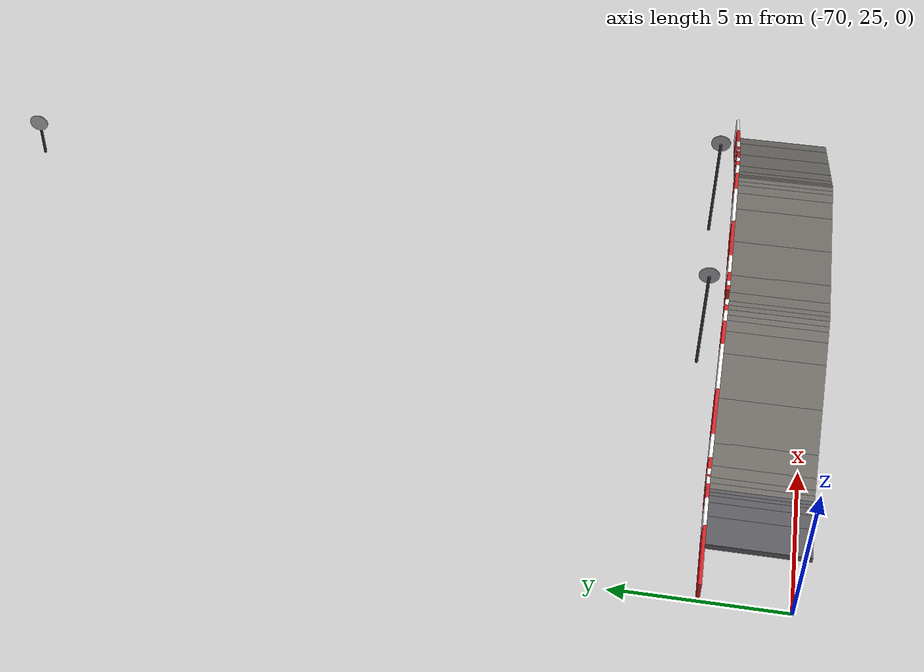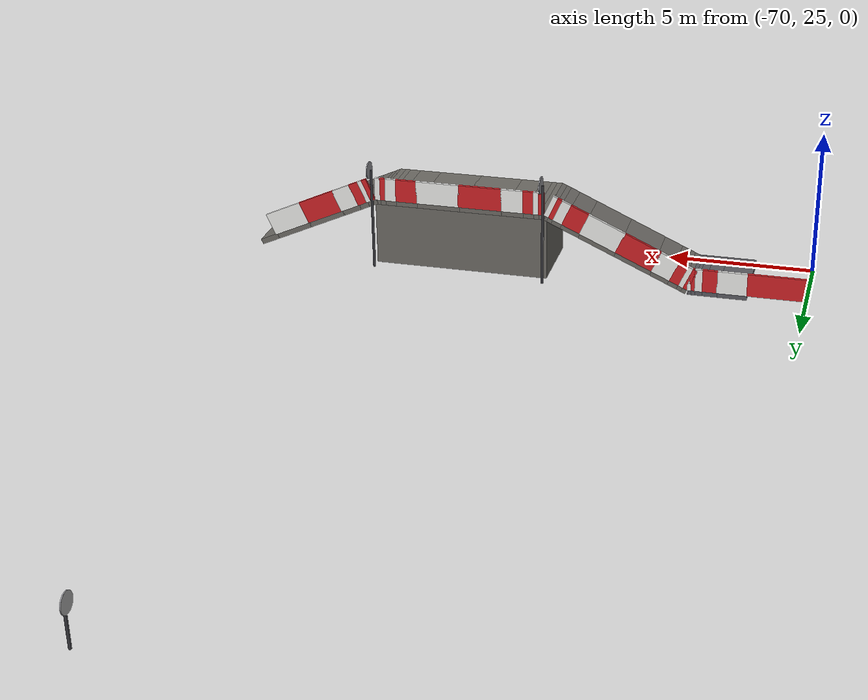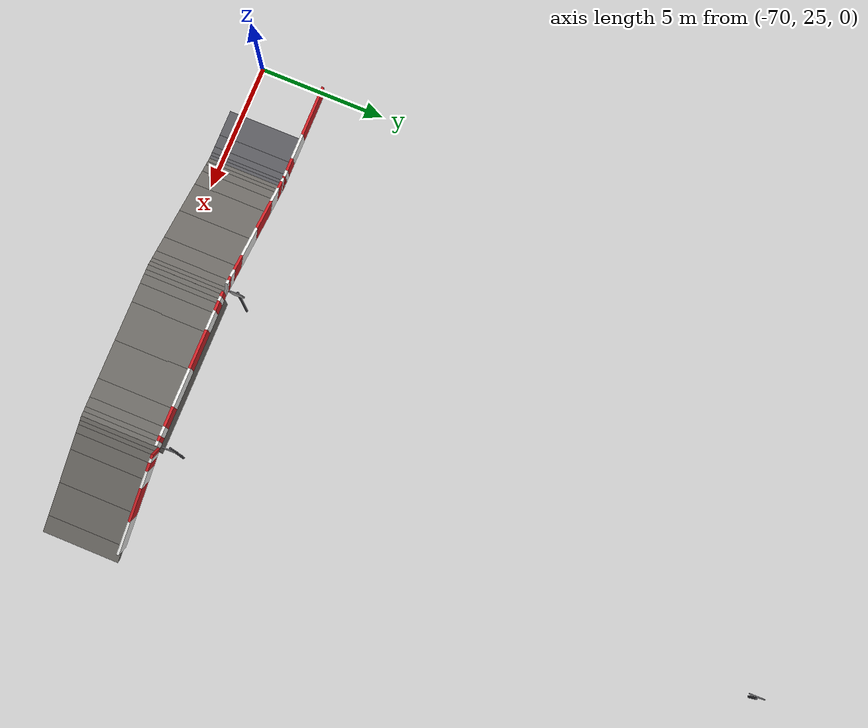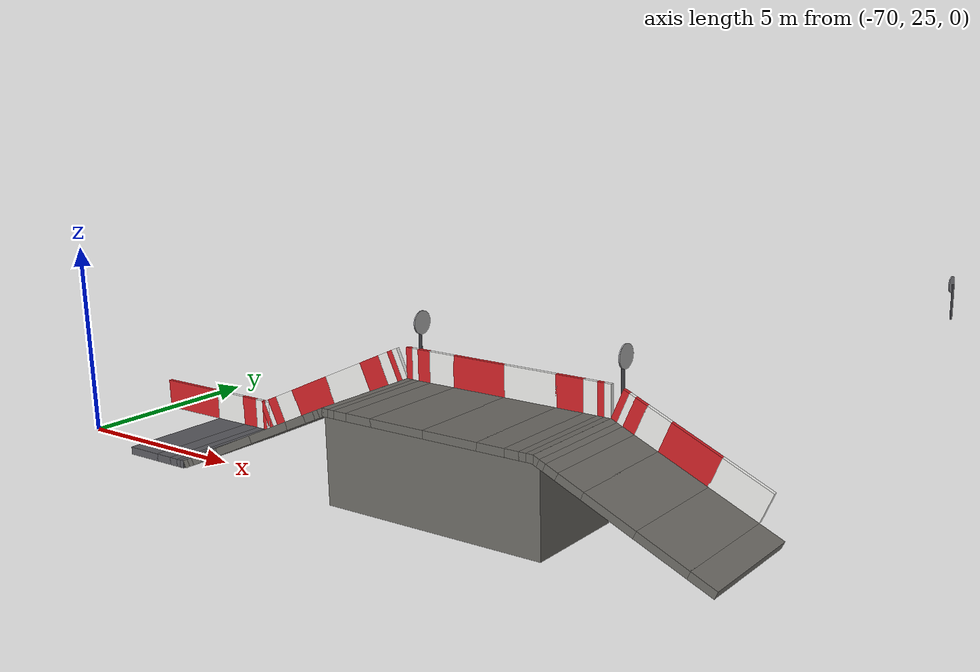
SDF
<sdf version="1.10">
 <world name="ika_parkur">
  <model name="parkur_road">
   <static>true</static>
   <link name="road_0162">
    <pose>-50.978536 26 0.330683 0 -0.422854 3.141593</pose>
    <collision name="road_0162_col">
     <geometry><box><size>0.699073 3 0.2</size></box></geometry>
     <surface>
      <friction><ode><mu>1</mu><mu2>1</mu2></ode></friction>
      <contact><ode><kp>1000000</kp><kd>1</kd></ode></contact>
     </surface>
    </collision>
    <visual name="road_0162_vis">
     <geometry><box><size>0.699073 3 0.2</size></box></geometry>
     <material>
      <ambient>0.42 0.41 0.39 1</ambient>
      <diffuse>0.42 0.41 0.39 1</diffuse>
      <specular>0.1 0.1 0.1 1</specular>
     </material>
    </visual>
   </link>
   <link name="road_0163">
    <pose>-51.916036 26 0.752558 0 -0.422854 3.141593</pose>
    <collision name="road_0163_col">
     <geometry><box><size>1.398147 3 0.2</size></box></geometry>
     <surface>
      <friction><ode><mu>1</mu><mu2>1</mu2></ode></friction>
      <contact><ode><kp>1000000</kp><kd>1</kd></ode></contact>
     </surface>
    </collision>
    <visual name="road_0163_vis">
     <geometry><box><size>1.398147 3 0.2</size></box></geometry>
     <material>
      <ambient>0.42 0.41 0.39 1</ambient>
      <diffuse>0.42 0.41 0.39 1</diffuse>
      <specular>0.1 0.1 0.1 1</specular>
     </material>
    </visual>
   </link>
   <link name="road_0164">
    <pose>-53.166036 26 1.315058 0 -0.422854 3.141593</pose>
    <collision name="road_0164_col">
     <geometry><box><size>1.398147 3 0.2</size></box></geometry>
     <surface>
      <friction><ode><mu>1</mu><mu2>1</mu2></ode></friction>
      <contact><ode><kp>1000000</kp><kd>1</kd></ode></contact>
     </surface>
    </collision>
    <visual name="road_0164_vis">
     <geometry><box><size>1.398147 3 0.2</size></box></geometry>
     <material>
      <ambient>0.42 0.41 0.39 1</ambient>
      <diffuse>0.42 0.41 0.39 1</diffuse>
      <specular>0.1 0.1 0.1 1</specular>
     </material>
    </visual>
   </link>
   <link name="road_0165">
    <pose>-54.103536 26 1.736933 0 -0.422854 3.141593</pose>
    <collision name="road_0165_col">
     <geometry><box><size>0.699073 3 0.2</size></box></geometry>
     <surface>
      <friction><ode><mu>1</mu><mu2>1</mu2></ode></friction>
      <contact><ode><kp>1000000</kp><kd>1</kd></ode></contact>
     </surface>
    </collision>
    <visual name="road_0165_vis">
     <geometry><box><size>0.699073 3 0.2</size></box></geometry>
     <material>
      <ambient>0.42 0.41 0.39 1</ambient>
      <diffuse>0.42 0.41 0.39 1</diffuse>
      <specular>0.1 0.1 0.1 1</specular>
     </material>
    </visual>
   </link>
   <link name="road_0166">
    <pose>-54.572286 26 1.94787 0 -0.422854 3.141593</pose>
    <collision name="road_0166_col">
     <geometry><box><size>0.349537 3 0.2</size></box></geometry>
     <surface>
      <friction><ode><mu>1</mu><mu2>1</mu2></ode></friction>
      <contact><ode><kp>1000000</kp><kd>1</kd></ode></contact>
     </surface>
    </collision>
    <visual name="road_0166_vis">
     <geometry><box><size>0.349537 3 0.2</size></box></geometry>
     <material>
      <ambient>0.42 0.41 0.39 1</ambient>
      <diffuse>0.42 0.41 0.39 1</diffuse>
      <specular>0.1 0.1 0.1 1</specular>
     </material>
    </visual>
   </link>
   <link name="road_0167">
    <pose>-54.806661 26 2.053339 0 -0.422854 3.141593</pose>
    <collision name="road_0167_col">
     <geometry><box><size>0.174768 3 0.2</size></box></geometry>
     <surface>
      <friction><ode><mu>1</mu><mu2>1</mu2></ode></friction>
      <contact><ode><kp>1000000</kp><kd>1</kd></ode></contact>
     </surface>
    </collision>
    <visual name="road_0167_vis">
     <geometry><box><size>0.174768 3 0.2</size></box></geometry>
     <material>
      <ambient>0.42 0.41 0.39 1</ambient>
      <diffuse>0.42 0.41 0.39 1</diffuse>
      <specular>0.1 0.1 0.1 1</specular>
     </material>
    </visual>
   </link>
   <link name="road_0168">
    <pose>-54.962911 26 2.123652 0 -0.422854 3.141593</pose>
    <collision name="road_0168_col">
     <geometry><box><size>0.174768 3 0.2</size></box></geometry>
     <surface>
      <friction><ode><mu>1</mu><mu2>1</mu2></ode></friction>
      <contact><ode><kp>1000000</kp><kd>1</kd></ode></contact>
     </surface>
    </collision>
    <visual name="road_0168_vis">
     <geometry><box><size>0.174768 3 0.2</size></box></geometry>
     <material>
      <ambient>0.42 0.41 0.39 1</ambient>
      <diffuse>0.42 0.41 0.39 1</diffuse>
      <specular>0.1 0.1 0.1 1</specular>
     </material>
    </visual>
   </link>
   <link name="road_0169">
    <pose>-55.09375 26 2.15 0 0 3.141593</pose>
    <collision name="road_0169_col">
     <geometry><box><size>0.19125 3 0.2</size></box></geometry>
     <surface>
      <friction><ode><mu>1</mu><mu2>1</mu2></ode></friction>
      <contact><ode><kp>1000000</kp><kd>1</kd></ode></contact>
     </surface>
    </collision>
    <visual name="road_0169_vis">
     <geometry><box><size>0.19125 3 0.2</size></box></geometry>
     <material>
      <ambient>0.42 0.41 0.39 1</ambient>
      <diffuse>0.42 0.41 0.39 1</diffuse>
      <specular>0.1 0.1 0.1 1</specular>
     </material>
    </visual>
   </link>
   <link name="road_0170">
    <pose>-55.28125 26 2.15 0 0 3.141593</pose>
    <collision name="road_0170_col">
     <geometry><box><size>0.19125 3 0.2</size></box></geometry>
     <surface>
      <friction><ode><mu>1</mu><mu2>1</mu2></ode></friction>
      <contact><ode><kp>1000000</kp><kd>1</kd></ode></contact>
     </surface>
    </collision>
    <visual name="road_0170_vis">
     <geometry><box><size>0.19125 3 0.2</size></box></geometry>
     <material>
      <ambient>0.42 0.41 0.39 1</ambient>
      <diffuse>0.42 0.41 0.39 1</diffuse>
      <specular>0.1 0.1 0.1 1</specular>
     </material>
    </visual>
   </link>
   <link name="road_0171">
    <pose>-55.5625 26 2.15 0 0 3.141593</pose>
    <collision name="road_0171_col">
     <geometry><box><size>0.3825 3 0.2</size></box></geometry>
     <surface>
      <friction><ode><mu>1</mu><mu2>1</mu2></ode></friction>
      <contact><ode><kp>1000000</kp><kd>1</kd></ode></contact>
     </surface>
    </collision>
    <visual name="road_0171_vis">
     <geometry><box><size>0.3825 3 0.2</size></box></geometry>
     <material>
      <ambient>0.42 0.41 0.39 1</ambient>
      <diffuse>0.42 0.41 0.39 1</diffuse>
      <specular>0.1 0.1 0.1 1</specular>
     </material>
    </visual>
   </link>
   <link name="road_0172">
    <pose>-56.125 26 2.15 0 0 3.141593</pose>
    <collision name="road_0172_col">
     <geometry><box><size>0.765 3 0.2</size></box></geometry>
     <surface>
      <friction><ode><mu>1</mu><mu2>1</mu2></ode></friction>
      <contact><ode><kp>1000000</kp><kd>1</kd></ode></contact>
     </surface>
    </collision>
    <visual name="road_0172_vis">
     <geometry><box><size>0.765 3 0.2</size></box></geometry>
     <material>
      <ambient>0.42 0.41 0.39 1</ambient>
      <diffuse>0.42 0.41 0.39 1</diffuse>
      <specular>0.1 0.1 0.1 1</specular>
     </material>
    </visual>
   </link>
   <link name="road_0173">
    <pose>-57.25 26 2.15 0 0 3.141593</pose>
    <collision name="road_0173_col">
     <geometry><box><size>1.53 3 0.2</size></box></geometry>
     <surface>
      <friction><ode><mu>1</mu><mu2>1</mu2></ode></friction>
      <contact><ode><kp>1000000</kp><kd>1</kd></ode></contact>
     </surface>
    </collision>
    <visual name="road_0173_vis">
     <geometry><box><size>1.53 3 0.2</size></box></geometry>
     <material>
      <ambient>0.42 0.41 0.39 1</ambient>
      <diffuse>0.42 0.41 0.39 1</diffuse>
      <specular>0.1 0.1 0.1 1</specular>
     </material>
    </visual>
   </link>
   <link name="road_0174">
    <pose>-58.75 26 2.15 0 0 3.141593</pose>
    <collision name="road_0174_col">
     <geometry><box><size>1.53 3 0.2</size></box></geometry>
     <surface>
      <friction><ode><mu>1</mu><mu2>1</mu2></ode></friction>
      <contact><ode><kp>1000000</kp><kd>1</kd></ode></contact>
     </surface>
    </collision>
    <visual name="road_0174_vis">
     <geometry><box><size>1.53 3 0.2</size></box></geometry>
     <material>
      <ambient>0.42 0.41 0.39 1</ambient>
      <diffuse>0.42 0.41 0.39 1</diffuse>
      <specular>0.1 0.1 0.1 1</specular>
     </material>
    </visual>
   </link>
   <link name="road_0175">
    <pose>-59.875 26 2.15 0 0 3.141593</pose>
    <collision name="road_0175_col">
     <geometry><box><size>0.765 3 0.2</size></box></geometry>
     <surface>
      <friction><ode><mu>1</mu><mu2>1</mu2></ode></friction>
      <contact><ode><kp>1000000</kp><kd>1</kd></ode></contact>
     </surface>
    </collision>
    <visual name="road_0175_vis">
     <geometry><box><size>0.765 3 0.2</size></box></geometry>
     <material>
      <ambient>0.42 0.41 0.39 1</ambient>
      <diffuse>0.42 0.41 0.39 1</diffuse>
      <specular>0.1 0.1 0.1 1</specular>
     </material>
    </visual>
   </link>
   <link name="road_0176">
    <pose>-60.4375 26 2.15 0 0 3.141593</pose>
    <collision name="road_0176_col">
     <geometry><box><size>0.3825 3 0.2</size></box></geometry>
     <surface>
      <friction><ode><mu>1</mu><mu2>1</mu2></ode></friction>
      <contact><ode><kp>1000000</kp><kd>1</kd></ode></contact>
     </surface>
    </collision>
    <visual name="road_0176_vis">
     <geometry><box><size>0.3825 3 0.2</size></box></geometry>
     <material>
      <ambient>0.42 0.41 0.39 1</ambient>
      <diffuse>0.42 0.41 0.39 1</diffuse>
      <specular>0.1 0.1 0.1 1</specular>
     </material>
    </visual>
   </link>
   <link name="road_0177">
    <pose>-60.71875 26 2.15 0 0 3.141593</pose>
    <collision name="road_0177_col">
     <geometry><box><size>0.19125 3 0.2</size></box></geometry>
     <surface>
      <friction><ode><mu>1</mu><mu2>1</mu2></ode></friction>
      <contact><ode><kp>1000000</kp><kd>1</kd></ode></contact>
     </surface>
    </collision>
    <visual name="road_0177_vis">
     <geometry><box><size>0.19125 3 0.2</size></box></geometry>
     <material>
      <ambient>0.42 0.41 0.39 1</ambient>
      <diffuse>0.42 0.41 0.39 1</diffuse>
      <specular>0.1 0.1 0.1 1</specular>
     </material>
    </visual>
   </link>
   <link name="road_0178">
    <pose>-60.90625 26 2.15 0 0 3.141593</pose>
    <collision name="road_0178_col">
     <geometry><box><size>0.19125 3 0.2</size></box></geometry>
     <surface>
      <friction><ode><mu>1</mu><mu2>1</mu2></ode></friction>
      <contact><ode><kp>1000000</kp><kd>1</kd></ode></contact>
     </surface>
    </collision>
    <visual name="road_0178_vis">
     <geometry><box><size>0.19125 3 0.2</size></box></geometry>
     <material>
      <ambient>0.42 0.41 0.39 1</ambient>
      <diffuse>0.42 0.41 0.39 1</diffuse>
      <specular>0.1 0.1 0.1 1</specular>
     </material>
    </visual>
   </link>
   <link name="road_0179">
    <pose>-61.037089 26 2.123652 0 0.422854 3.141593</pose>
    <collision name="road_0179_col">
     <geometry><box><size>0.174768 3 0.2</size></box></geometry>
     <surface>
      <friction><ode><mu>1</mu><mu2>1</mu2></ode></friction>
      <contact><ode><kp>1000000</kp><kd>1</kd></ode></contact>
     </surface>
    </collision>
    <visual name="road_0179_vis">
     <geometry><box><size>0.174768 3 0.2</size></box></geometry>
     <material>
      <ambient>0.42 0.41 0.39 1</ambient>
      <diffuse>0.42 0.41 0.39 1</diffuse>
      <specular>0.1 0.1 0.1 1</specular>
     </material>
    </visual>
   </link>
   <link name="road_0180">
    <pose>-61.193339 26 2.053339 0 0.422854 3.141593</pose>
    <collision name="road_0180_col">
     <geometry><box><size>0.174768 3 0.2</size></box></geometry>
     <surface>
      <friction><ode><mu>1</mu><mu2>1</mu2></ode></friction>
      <contact><ode><kp>1000000</kp><kd>1</kd></ode></contact>
     </surface>
    </collision>
    <visual name="road_0180_vis">
     <geometry><box><size>0.174768 3 0.2</size></box></geometry>
     <material>
      <ambient>0.42 0.41 0.39 1</ambient>
      <diffuse>0.42 0.41 0.39 1</diffuse>
      <specular>0.1 0.1 0.1 1</specular>
     </material>
    </visual>
   </link>
   <link name="road_0181">
    <pose>-61.427714 26 1.94787 0 0.422854 3.141593</pose>
    <collision name="road_0181_col">
     <geometry><box><size>0.349537 3 0.2</size></box></geometry>
     <surface>
      <friction><ode><mu>1</mu><mu2>1</mu2></ode></friction>
      <contact><ode><kp>1000000</kp><kd>1</kd></ode></contact>
     </surface>
    </collision>
    <visual name="road_0181_vis">
     <geometry><box><size>0.349537 3 0.2</size></box></geometry>
     <material>
      <ambient>0.42 0.41 0.39 1</ambient>
      <diffuse>0.42 0.41 0.39 1</diffuse>
      <specular>0.1 0.1 0.1 1</specular>
     </material>
    </visual>
   </link>
   <link name="road_0182">
    <pose>-61.896464 26 1.736933 0 0.422854 3.141593</pose>
    <collision name="road_0182_col">
     <geometry><box><size>0.699073 3 0.2</size></box></geometry>
     <surface>
      <friction><ode><mu>1</mu><mu2>1</mu2></ode></friction>
      <contact><ode><kp>1000000</kp><kd>1</kd></ode></contact>
     </surface>
    </collision>
    <visual name="road_0182_vis">
     <geometry><box><size>0.699073 3 0.2</size></box></geometry>
     <material>
      <ambient>0.42 0.41 0.39 1</ambient>
      <diffuse>0.42 0.41 0.39 1</diffuse>
      <specular>0.1 0.1 0.1 1</specular>
     </material>
    </visual>
   </link>
   <link name="road_0183">
    <pose>-62.833964 26 1.315058 0 0.422854 3.141593</pose>
    <collision name="road_0183_col">
     <geometry><box><size>1.398147 3 0.2</size></box></geometry>
     <surface>
      <friction><ode><mu>1</mu><mu2>1</mu2></ode></friction>
      <contact><ode><kp>1000000</kp><kd>1</kd></ode></contact>
     </surface>
    </collision>
    <visual name="road_0183_vis">
     <geometry><box><size>1.398147 3 0.2</size></box></geometry>
     <material>
      <ambient>0.42 0.41 0.39 1</ambient>
      <diffuse>0.42 0.41 0.39 1</diffuse>
      <specular>0.1 0.1 0.1 1</specular>
     </material>
    </visual>
   </link>
   <link name="road_0184">
    <pose>-64.083964 26 0.752558 0 0.422854 3.141593</pose>
    <collision name="road_0184_col">
     <geometry><box><size>1.398147 3 0.2</size></box></geometry>
     <surface>
      <friction><ode><mu>1</mu><mu2>1</mu2></ode></friction>
      <contact><ode><kp>1000000</kp><kd>1</kd></ode></contact>
     </surface>
    </collision>
    <visual name="road_0184_vis">
     <geometry><box><size>1.398147 3 0.2</size></box></geometry>
     <material>
      <ambient>0.42 0.41 0.39 1</ambient>
      <diffuse>0.42 0.41 0.39 1</diffuse>
      <specular>0.1 0.1 0.1 1</specular>
     </material>
    </visual>
   </link>
   <link name="road_0185">
    <pose>-65.021464 26 0.330683 0 0.422854 3.141593</pose>
    <collision name="road_0185_col">
     <geometry><box><size>0.699073 3 0.2</size></box></geometry>
     <surface>
      <friction><ode><mu>1</mu><mu2>1</mu2></ode></friction>
      <contact><ode><kp>1000000</kp><kd>1</kd></ode></contact>
     </surface>
    </collision>
    <visual name="road_0185_vis">
     <geometry><box><size>0.699073 3 0.2</size></box></geometry>
     <material>
      <ambient>0.42 0.41 0.39 1</ambient>
      <diffuse>0.42 0.41 0.39 1</diffuse>
      <specular>0.1 0.1 0.1 1</specular>
     </material>
    </visual>
   </link>
   <link name="road_0186">
    <pose>-65.490214 26 0.119745 0 0.422854 3.141593</pose>
    <collision name="road_0186_col">
     <geometry><box><size>0.349537 3 0.2</size></box></geometry>
     <surface>
      <friction><ode><mu>1</mu><mu2>1</mu2></ode></friction>
      <contact><ode><kp>1000000</kp><kd>1</kd></ode></contact>
     </surface>
    </collision>
    <visual name="road_0186_vis">
     <geometry><box><size>0.349537 3 0.2</size></box></geometry>
     <material>
      <ambient>0.42 0.41 0.39 1</ambient>
      <diffuse>0.42 0.41 0.39 1</diffuse>
      <specular>0.1 0.1 0.1 1</specular>
     </material>
    </visual>
   </link>
   <link name="road_0187">
    <pose>-65.724589 26 0.014277 0 0.422854 3.141593</pose>
    <collision name="road_0187_col">
     <geometry><box><size>0.174768 3 0.2</size></box></geometry>
     <surface>
      <friction><ode><mu>1</mu><mu2>1</mu2></ode></friction>
      <contact><ode><kp>1000000</kp><kd>1</kd></ode></contact>
     </surface>
    </collision>
    <visual name="road_0187_vis">
     <geometry><box><size>0.174768 3 0.2</size></box></geometry>
     <material>
      <ambient>0.42 0.41 0.39 1</ambient>
      <diffuse>0.42 0.41 0.39 1</diffuse>
      <specular>0.1 0.1 0.1 1</specular>
     </material>
    </visual>
   </link>
   <link name="road_0188">
    <pose>-65.880839 26 -0.056036 0 0.422854 3.141593</pose>
    <collision name="road_0188_col">
     <geometry><box><size>0.174768 3 0.2</size></box></geometry>
     <surface>
      <friction><ode><mu>1</mu><mu2>1</mu2></ode></friction>
      <contact><ode><kp>1000000</kp><kd>1</kd></ode></contact>
     </surface>
    </collision>
    <visual name="road_0188_vis">
     <geometry><box><size>0.174768 3 0.2</size></box></geometry>
     <material>
      <ambient>0.42 0.41 0.39 1</ambient>
      <diffuse>0.42 0.41 0.39 1</diffuse>
      <specular>0.1 0.1 0.1 1</specular>
     </material>
    </visual>
   </link>
   <link name="road_0189">
    <pose>-66.0625 26 -0.1 0 0 3.141593</pose>
    <collision name="road_0189_col">
     <geometry><box><size>0.1275 3 0.2</size></box></geometry>
     <surface>
      <friction><ode><mu>1</mu><mu2>1</mu2></ode></friction>
      <contact><ode><kp>1000000</kp><kd>1</kd></ode></contact>
     </surface>
    </collision>
    <visual name="road_0189_vis">
     <geometry><box><size>0.1275 3 0.2</size></box></geometry>
     <material>
      <ambient>0.35 0.35 0.37 1</ambient>
      <diffuse>0.35 0.35 0.37 1</diffuse>
      <specular>0.1 0.1 0.1 1</specular>
     </material>
    </visual>
   </link>
   <link name="road_0190">
    <pose>-66.1875 26 -0.1 0 0 3.141593</pose>
    <collision name="road_0190_col">
     <geometry><box><size>0.1275 3 0.2</size></box></geometry>
     <surface>
      <friction><ode><mu>1</mu><mu2>1</mu2></ode></friction>
      <contact><ode><kp>1000000</kp><kd>1</kd></ode></contact>
     </surface>
    </collision>
    <visual name="road_0190_vis">
     <geometry><box><size>0.1275 3 0.2</size></box></geometry>
     <material>
      <ambient>0.35 0.35 0.37 1</ambient>
      <diffuse>0.35 0.35 0.37 1</diffuse>
      <specular>0.1 0.1 0.1 1</specular>
     </material>
    </visual>
   </link>
   <link name="road_0191">
    <pose>-66.375 26 -0.1 0 0 3.141593</pose>
    <collision name="road_0191_col">
     <geometry><box><size>0.255 3 0.2</size></box></geometry>
     <surface>
      <friction><ode><mu>1</mu><mu2>1</mu2></ode></friction>
      <contact><ode><kp>1000000</kp><kd>1</kd></ode></contact>
     </surface>
    </collision>
    <visual name="road_0191_vis">
     <geometry><box><size>0.255 3 0.2</size></box></geometry>
     <material>
      <ambient>0.35 0.35 0.37 1</ambient>
      <diffuse>0.35 0.35 0.37 1</diffuse>
      <specular>0.1 0.1 0.1 1</specular>
     </material>
    </visual>
   </link>
   <link name="road_0192">
    <pose>-66.75 26 -0.1 0 0 3.141593</pose>
    <collision name="road_0192_col">
     <geometry><box><size>0.51 3 0.2</size></box></geometry>
     <surface>
      <friction><ode><mu>1</mu><mu2>1</mu2></ode></friction>
      <contact><ode><kp>1000000</kp><kd>1</kd></ode></contact>
     </surface>
    </collision>
    <visual name="road_0192_vis">
     <geometry><box><size>0.51 3 0.2</size></box></geometry>
     <material>
      <ambient>0.35 0.35 0.37 1</ambient>
      <diffuse>0.35 0.35 0.37 1</diffuse>
      <specular>0.1 0.1 0.1 1</specular>
     </material>
    </visual>
   </link>
   <link name="road_0193">
    <pose>-67.5 26 -0.1 0 0 3.141593</pose>
    <collision name="road_0193_col">
     <geometry><box><size>1.02 3 0.2</size></box></geometry>
     <surface>
      <friction><ode><mu>1</mu><mu2>1</mu2></ode></friction>
      <contact><ode><kp>1000000</kp><kd>1</kd></ode></contact>
     </surface>
    </collision>
    <visual name="road_0193_vis">
     <geometry><box><size>1.02 3 0.2</size></box></geometry>
     <material>
      <ambient>0.35 0.35 0.37 1</ambient>
      <diffuse>0.35 0.35 0.37 1</diffuse>
      <specular>0.1 0.1 0.1 1</specular>
     </material>
    </visual>
   </link>
  </model>
  <model name="parkur_barriers">
   <static>true</static>
   <link name="barrier_r_0163">
    <pose>-51.710854 27.55 1.208519 0 -0.422854 3.141593</pose>
    <collision name="barrier_r_0163_col">
     <geometry><box><size>1.398147 0.1 0.8</size></box></geometry>
     <surface>
      <friction><ode><mu>0.6</mu><mu2>0.6</mu2></ode></friction>
      <contact><ode><kp>1000000</kp><kd>1</kd></ode></contact>
     </surface>
    </collision>
    <visual name="barrier_r_0163_vis">
     <geometry><box><size>1.398147 0.1 0.8</size></box></geometry>
     <material>
      <ambient>0.93 0.93 0.92 1</ambient>
      <diffuse>0.93 0.93 0.92 1</diffuse>
      <specular>0.1 0.1 0.1 1</specular>
     </material>
    </visual>
   </link>
   <link name="barrier_r_0164">
    <pose>-52.960854 27.55 1.771019 0 -0.422854 3.141593</pose>
    <collision name="barrier_r_0164_col">
     <geometry><box><size>1.398147 0.1 0.8</size></box></geometry>
     <surface>
      <friction><ode><mu>0.6</mu><mu2>0.6</mu2></ode></friction>
      <contact><ode><kp>1000000</kp><kd>1</kd></ode></contact>
     </surface>
    </collision>
    <visual name="barrier_r_0164_vis">
     <geometry><box><size>1.398147 0.1 0.8</size></box></geometry>
     <material>
      <ambient>0.81 0.13 0.15 1</ambient>
      <diffuse>0.81 0.13 0.15 1</diffuse>
      <specular>0.1 0.1 0.1 1</specular>
     </material>
    </visual>
   </link>
   <link name="barrier_r_0165">
    <pose>-53.898354 27.55 2.192894 0 -0.422854 3.141593</pose>
    <collision name="barrier_r_0165_col">
     <geometry><box><size>0.699073 0.1 0.8</size></box></geometry>
     <surface>
      <friction><ode><mu>0.6</mu><mu2>0.6</mu2></ode></friction>
      <contact><ode><kp>1000000</kp><kd>1</kd></ode></contact>
     </surface>
    </collision>
    <visual name="barrier_r_0165_vis">
     <geometry><box><size>0.699073 0.1 0.8</size></box></geometry>
     <material>
      <ambient>0.93 0.93 0.92 1</ambient>
      <diffuse>0.93 0.93 0.92 1</diffuse>
      <specular>0.1 0.1 0.1 1</specular>
     </material>
    </visual>
   </link>
   <link name="barrier_r_0166">
    <pose>-54.367104 27.55 2.403831 0 -0.422854 3.141593</pose>
    <collision name="barrier_r_0166_col">
     <geometry><box><size>0.349537 0.1 0.8</size></box></geometry>
     <surface>
      <friction><ode><mu>0.6</mu><mu2>0.6</mu2></ode></friction>
      <contact><ode><kp>1000000</kp><kd>1</kd></ode></contact>
     </surface>
    </collision>
    <visual name="barrier_r_0166_vis">
     <geometry><box><size>0.349537 0.1 0.8</size></box></geometry>
     <material>
      <ambient>0.81 0.13 0.15 1</ambient>
      <diffuse>0.81 0.13 0.15 1</diffuse>
      <specular>0.1 0.1 0.1 1</specular>
     </material>
    </visual>
   </link>
   <link name="barrier_r_0167">
    <pose>-54.601479 27.55 2.5093 0 -0.422854 3.141593</pose>
    <collision name="barrier_r_0167_col">
     <geometry><box><size>0.174768 0.1 0.8</size></box></geometry>
     <surface>
      <friction><ode><mu>0.6</mu><mu2>0.6</mu2></ode></friction>
      <contact><ode><kp>1000000</kp><kd>1</kd></ode></contact>
     </surface>
    </collision>
    <visual name="barrier_r_0167_vis">
     <geometry><box><size>0.174768 0.1 0.8</size></box></geometry>
     <material>
      <ambient>0.93 0.93 0.92 1</ambient>
      <diffuse>0.93 0.93 0.92 1</diffuse>
      <specular>0.1 0.1 0.1 1</specular>
     </material>
    </visual>
   </link>
   <link name="barrier_r_0168">
    <pose>-54.757729 27.55 2.579612 0 -0.422854 3.141593</pose>
    <collision name="barrier_r_0168_col">
     <geometry><box><size>0.174768 0.1 0.8</size></box></geometry>
     <surface>
      <friction><ode><mu>0.6</mu><mu2>0.6</mu2></ode></friction>
      <contact><ode><kp>1000000</kp><kd>1</kd></ode></contact>
     </surface>
    </collision>
    <visual name="barrier_r_0168_vis">
     <geometry><box><size>0.174768 0.1 0.8</size></box></geometry>
     <material>
      <ambient>0.81 0.13 0.15 1</ambient>
      <diffuse>0.81 0.13 0.15 1</diffuse>
      <specular>0.1 0.1 0.1 1</specular>
     </material>
    </visual>
   </link>
   <link name="barrier_r_0169">
    <pose>-55.09375 27.55 2.65 0 0 3.141593</pose>
    <collision name="barrier_r_0169_col">
     <geometry><box><size>0.19125 0.1 0.8</size></box></geometry>
     <surface>
      <friction><ode><mu>0.6</mu><mu2>0.6</mu2></ode></friction>
      <contact><ode><kp>1000000</kp><kd>1</kd></ode></contact>
     </surface>
    </collision>
    <visual name="barrier_r_0169_vis">
     <geometry><box><size>0.19125 0.1 0.8</size></box></geometry>
     <material>
      <ambient>0.93 0.93 0.92 1</ambient>
      <diffuse>0.93 0.93 0.92 1</diffuse>
      <specular>0.1 0.1 0.1 1</specular>
     </material>
    </visual>
   </link>
   <link name="barrier_r_0170">
    <pose>-55.28125 27.55 2.65 0 0 3.141593</pose>
    <collision name="barrier_r_0170_col">
     <geometry><box><size>0.19125 0.1 0.8</size></box></geometry>
     <surface>
      <friction><ode><mu>0.6</mu><mu2>0.6</mu2></ode></friction>
      <contact><ode><kp>1000000</kp><kd>1</kd></ode></contact>
     </surface>
    </collision>
    <visual name="barrier_r_0170_vis">
     <geometry><box><size>0.19125 0.1 0.8</size></box></geometry>
     <material>
      <ambient>0.81 0.13 0.15 1</ambient>
      <diffuse>0.81 0.13 0.15 1</diffuse>
      <specular>0.1 0.1 0.1 1</specular>
     </material>
    </visual>
   </link>
   <link name="barrier_r_0171">
    <pose>-55.5625 27.55 2.65 0 0 3.141593</pose>
    <collision name="barrier_r_0171_col">
     <geometry><box><size>0.3825 0.1 0.8</size></box></geometry>
     <surface>
      <friction><ode><mu>0.6</mu><mu2>0.6</mu2></ode></friction>
      <contact><ode><kp>1000000</kp><kd>1</kd></ode></contact>
     </surface>
    </collision>
    <visual name="barrier_r_0171_vis">
     <geometry><box><size>0.3825 0.1 0.8</size></box></geometry>
     <material>
      <ambient>0.93 0.93 0.92 1</ambient>
      <diffuse>0.93 0.93 0.92 1</diffuse>
      <specular>0.1 0.1 0.1 1</specular>
     </material>
    </visual>
   </link>
   <link name="barrier_r_0172">
    <pose>-56.125 27.55 2.65 0 0 3.141593</pose>
    <collision name="barrier_r_0172_col">
     <geometry><box><size>0.765 0.1 0.8</size></box></geometry>
     <surface>
      <friction><ode><mu>0.6</mu><mu2>0.6</mu2></ode></friction>
      <contact><ode><kp>1000000</kp><kd>1</kd></ode></contact>
     </surface>
    </collision>
    <visual name="barrier_r_0172_vis">
     <geometry><box><size>0.765 0.1 0.8</size></box></geometry>
     <material>
      <ambient>0.81 0.13 0.15 1</ambient>
      <diffuse>0.81 0.13 0.15 1</diffuse>
      <specular>0.1 0.1 0.1 1</specular>
     </material>
    </visual>
   </link>
   <link name="barrier_r_0173">
    <pose>-57.25 27.55 2.65 0 0 3.141593</pose>
    <collision name="barrier_r_0173_col">
     <geometry><box><size>1.53 0.1 0.8</size></box></geometry>
     <surface>
      <friction><ode><mu>0.6</mu><mu2>0.6</mu2></ode></friction>
      <contact><ode><kp>1000000</kp><kd>1</kd></ode></contact>
     </surface>
    </collision>
    <visual name="barrier_r_0173_vis">
     <geometry><box><size>1.53 0.1 0.8</size></box></geometry>
     <material>
      <ambient>0.93 0.93 0.92 1</ambient>
      <diffuse>0.93 0.93 0.92 1</diffuse>
      <specular>0.1 0.1 0.1 1</specular>
     </material>
    </visual>
   </link>
   <link name="barrier_r_0174">
    <pose>-58.75 27.55 2.65 0 0 3.141593</pose>
    <collision name="barrier_r_0174_col">
     <geometry><box><size>1.53 0.1 0.8</size></box></geometry>
     <surface>
      <friction><ode><mu>0.6</mu><mu2>0.6</mu2></ode></friction>
      <contact><ode><kp>1000000</kp><kd>1</kd></ode></contact>
     </surface>
    </collision>
    <visual name="barrier_r_0174_vis">
     <geometry><box><size>1.53 0.1 0.8</size></box></geometry>
     <material>
      <ambient>0.81 0.13 0.15 1</ambient>
      <diffuse>0.81 0.13 0.15 1</diffuse>
      <specular>0.1 0.1 0.1 1</specular>
     </material>
    </visual>
   </link>
   <link name="barrier_r_0175">
    <pose>-59.875 27.55 2.65 0 0 3.141593</pose>
    <collision name="barrier_r_0175_col">
     <geometry><box><size>0.765 0.1 0.8</size></box></geometry>
     <surface>
      <friction><ode><mu>0.6</mu><mu2>0.6</mu2></ode></friction>
      <contact><ode><kp>1000000</kp><kd>1</kd></ode></contact>
     </surface>
    </collision>
    <visual name="barrier_r_0175_vis">
     <geometry><box><size>0.765 0.1 0.8</size></box></geometry>
     <material>
      <ambient>0.93 0.93 0.92 1</ambient>
      <diffuse>0.93 0.93 0.92 1</diffuse>
      <specular>0.1 0.1 0.1 1</specular>
     </material>
    </visual>
   </link>
   <link name="barrier_r_0176">
    <pose>-60.4375 27.55 2.65 0 0 3.141593</pose>
    <collision name="barrier_r_0176_col">
     <geometry><box><size>0.3825 0.1 0.8</size></box></geometry>
     <surface>
      <friction><ode><mu>0.6</mu><mu2>0.6</mu2></ode></friction>
      <contact><ode><kp>1000000</kp><kd>1</kd></ode></contact>
     </surface>
    </collision>
    <visual name="barrier_r_0176_vis">
     <geometry><box><size>0.3825 0.1 0.8</size></box></geometry>
     <material>
      <ambient>0.81 0.13 0.15 1</ambient>
      <diffuse>0.81 0.13 0.15 1</diffuse>
      <specular>0.1 0.1 0.1 1</specular>
     </material>
    </visual>
   </link>
   <link name="barrier_r_0177">
    <pose>-60.71875 27.55 2.65 0 0 3.141593</pose>
    <collision name="barrier_r_0177_col">
     <geometry><box><size>0.19125 0.1 0.8</size></box></geometry>
     <surface>
      <friction><ode><mu>0.6</mu><mu2>0.6</mu2></ode></friction>
      <contact><ode><kp>1000000</kp><kd>1</kd></ode></contact>
     </surface>
    </collision>
    <visual name="barrier_r_0177_vis">
     <geometry><box><size>0.19125 0.1 0.8</size></box></geometry>
     <material>
      <ambient>0.93 0.93 0.92 1</ambient>
      <diffuse>0.93 0.93 0.92 1</diffuse>
      <specular>0.1 0.1 0.1 1</specular>
     </material>
    </visual>
   </link>
   <link name="barrier_r_0178">
    <pose>-60.90625 27.55 2.65 0 0 3.141593</pose>
    <collision name="barrier_r_0178_col">
     <geometry><box><size>0.19125 0.1 0.8</size></box></geometry>
     <surface>
      <friction><ode><mu>0.6</mu><mu2>0.6</mu2></ode></friction>
      <contact><ode><kp>1000000</kp><kd>1</kd></ode></contact>
     </surface>
    </collision>
    <visual name="barrier_r_0178_vis">
     <geometry><box><size>0.19125 0.1 0.8</size></box></geometry>
     <material>
      <ambient>0.81 0.13 0.15 1</ambient>
      <diffuse>0.81 0.13 0.15 1</diffuse>
      <specular>0.1 0.1 0.1 1</specular>
     </material>
    </visual>
   </link>
   <link name="barrier_r_0179">
    <pose>-61.242271 27.55 2.579612 0 0.422854 3.141593</pose>
    <collision name="barrier_r_0179_col">
     <geometry><box><size>0.174768 0.1 0.8</size></box></geometry>
     <surface>
      <friction><ode><mu>0.6</mu><mu2>0.6</mu2></ode></friction>
      <contact><ode><kp>1000000</kp><kd>1</kd></ode></contact>
     </surface>
    </collision>
    <visual name="barrier_r_0179_vis">
     <geometry><box><size>0.174768 0.1 0.8</size></box></geometry>
     <material>
      <ambient>0.93 0.93 0.92 1</ambient>
      <diffuse>0.93 0.93 0.92 1</diffuse>
      <specular>0.1 0.1 0.1 1</specular>
     </material>
    </visual>
   </link>
   <link name="barrier_r_0180">
    <pose>-61.398521 27.55 2.5093 0 0.422854 3.141593</pose>
    <collision name="barrier_r_0180_col">
     <geometry><box><size>0.174768 0.1 0.8</size></box></geometry>
     <surface>
      <friction><ode><mu>0.6</mu><mu2>0.6</mu2></ode></friction>
      <contact><ode><kp>1000000</kp><kd>1</kd></ode></contact>
     </surface>
    </collision>
    <visual name="barrier_r_0180_vis">
     <geometry><box><size>0.174768 0.1 0.8</size></box></geometry>
     <material>
      <ambient>0.81 0.13 0.15 1</ambient>
      <diffuse>0.81 0.13 0.15 1</diffuse>
      <specular>0.1 0.1 0.1 1</specular>
     </material>
    </visual>
   </link>
   <link name="barrier_r_0181">
    <pose>-61.632896 27.55 2.403831 0 0.422854 3.141593</pose>
    <collision name="barrier_r_0181_col">
     <geometry><box><size>0.349537 0.1 0.8</size></box></geometry>
     <surface>
      <friction><ode><mu>0.6</mu><mu2>0.6</mu2></ode></friction>
      <contact><ode><kp>1000000</kp><kd>1</kd></ode></contact>
     </surface>
    </collision>
    <visual name="barrier_r_0181_vis">
     <geometry><box><size>0.349537 0.1 0.8</size></box></geometry>
     <material>
      <ambient>0.93 0.93 0.92 1</ambient>
      <diffuse>0.93 0.93 0.92 1</diffuse>
      <specular>0.1 0.1 0.1 1</specular>
     </material>
    </visual>
   </link>
   <link name="barrier_r_0182">
    <pose>-62.101646 27.55 2.192894 0 0.422854 3.141593</pose>
    <collision name="barrier_r_0182_col">
     <geometry><box><size>0.699073 0.1 0.8</size></box></geometry>
     <surface>
      <friction><ode><mu>0.6</mu><mu2>0.6</mu2></ode></friction>
      <contact><ode><kp>1000000</kp><kd>1</kd></ode></contact>
     </surface>
    </collision>
    <visual name="barrier_r_0182_vis">
     <geometry><box><size>0.699073 0.1 0.8</size></box></geometry>
     <material>
      <ambient>0.81 0.13 0.15 1</ambient>
      <diffuse>0.81 0.13 0.15 1</diffuse>
      <specular>0.1 0.1 0.1 1</specular>
     </material>
    </visual>
   </link>
   <link name="barrier_r_0183">
    <pose>-63.039146 27.55 1.771019 0 0.422854 3.141593</pose>
    <collision name="barrier_r_0183_col">
     <geometry><box><size>1.398147 0.1 0.8</size></box></geometry>
     <surface>
      <friction><ode><mu>0.6</mu><mu2>0.6</mu2></ode></friction>
      <contact><ode><kp>1000000</kp><kd>1</kd></ode></contact>
     </surface>
    </collision>
    <visual name="barrier_r_0183_vis">
     <geometry><box><size>1.398147 0.1 0.8</size></box></geometry>
     <material>
      <ambient>0.93 0.93 0.92 1</ambient>
      <diffuse>0.93 0.93 0.92 1</diffuse>
      <specular>0.1 0.1 0.1 1</specular>
     </material>
    </visual>
   </link>
   <link name="barrier_r_0184">
    <pose>-64.289146 27.55 1.208519 0 0.422854 3.141593</pose>
    <collision name="barrier_r_0184_col">
     <geometry><box><size>1.398147 0.1 0.8</size></box></geometry>
     <surface>
      <friction><ode><mu>0.6</mu><mu2>0.6</mu2></ode></friction>
      <contact><ode><kp>1000000</kp><kd>1</kd></ode></contact>
     </surface>
    </collision>
    <visual name="barrier_r_0184_vis">
     <geometry><box><size>1.398147 0.1 0.8</size></box></geometry>
     <material>
      <ambient>0.81 0.13 0.15 1</ambient>
      <diffuse>0.81 0.13 0.15 1</diffuse>
      <specular>0.1 0.1 0.1 1</specular>
     </material>
    </visual>
   </link>
   <link name="barrier_r_0185">
    <pose>-65.226646 27.55 0.786644 0 0.422854 3.141593</pose>
    <collision name="barrier_r_0185_col">
     <geometry><box><size>0.699073 0.1 0.8</size></box></geometry>
     <surface>
      <friction><ode><mu>0.6</mu><mu2>0.6</mu2></ode></friction>
      <contact><ode><kp>1000000</kp><kd>1</kd></ode></contact>
     </surface>
    </collision>
    <visual name="barrier_r_0185_vis">
     <geometry><box><size>0.699073 0.1 0.8</size></box></geometry>
     <material>
      <ambient>0.93 0.93 0.92 1</ambient>
      <diffuse>0.93 0.93 0.92 1</diffuse>
      <specular>0.1 0.1 0.1 1</specular>
     </material>
    </visual>
   </link>
   <link name="barrier_r_0186">
    <pose>-65.695396 27.55 0.575706 0 0.422854 3.141593</pose>
    <collision name="barrier_r_0186_col">
     <geometry><box><size>0.349537 0.1 0.8</size></box></geometry>
     <surface>
      <friction><ode><mu>0.6</mu><mu2>0.6</mu2></ode></friction>
      <contact><ode><kp>1000000</kp><kd>1</kd></ode></contact>
     </surface>
    </collision>
    <visual name="barrier_r_0186_vis">
     <geometry><box><size>0.349537 0.1 0.8</size></box></geometry>
     <material>
      <ambient>0.81 0.13 0.15 1</ambient>
      <diffuse>0.81 0.13 0.15 1</diffuse>
      <specular>0.1 0.1 0.1 1</specular>
     </material>
    </visual>
   </link>
   <link name="barrier_r_0187">
    <pose>-65.929771 27.55 0.470237 0 0.422854 3.141593</pose>
    <collision name="barrier_r_0187_col">
     <geometry><box><size>0.174768 0.1 0.8</size></box></geometry>
     <surface>
      <friction><ode><mu>0.6</mu><mu2>0.6</mu2></ode></friction>
      <contact><ode><kp>1000000</kp><kd>1</kd></ode></contact>
     </surface>
    </collision>
    <visual name="barrier_r_0187_vis">
     <geometry><box><size>0.174768 0.1 0.8</size></box></geometry>
     <material>
      <ambient>0.93 0.93 0.92 1</ambient>
      <diffuse>0.93 0.93 0.92 1</diffuse>
      <specular>0.1 0.1 0.1 1</specular>
     </material>
    </visual>
   </link>
   <link name="barrier_r_0188">
    <pose>-66.086021 27.55 0.399925 0 0.422854 3.141593</pose>
    <collision name="barrier_r_0188_col">
     <geometry><box><size>0.174768 0.1 0.8</size></box></geometry>
     <surface>
      <friction><ode><mu>0.6</mu><mu2>0.6</mu2></ode></friction>
      <contact><ode><kp>1000000</kp><kd>1</kd></ode></contact>
     </surface>
    </collision>
    <visual name="barrier_r_0188_vis">
     <geometry><box><size>0.174768 0.1 0.8</size></box></geometry>
     <material>
      <ambient>0.81 0.13 0.15 1</ambient>
      <diffuse>0.81 0.13 0.15 1</diffuse>
      <specular>0.1 0.1 0.1 1</specular>
     </material>
    </visual>
   </link>
   <link name="barrier_r_0189">
    <pose>-66.0625 27.55 0.4 0 0 3.141593</pose>
    <collision name="barrier_r_0189_col">
     <geometry><box><size>0.1275 0.1 0.8</size></box></geometry>
     <surface>
      <friction><ode><mu>0.6</mu><mu2>0.6</mu2></ode></friction>
      <contact><ode><kp>1000000</kp><kd>1</kd></ode></contact>
     </surface>
    </collision>
    <visual name="barrier_r_0189_vis">
     <geometry><box><size>0.1275 0.1 0.8</size></box></geometry>
     <material>
      <ambient>0.93 0.93 0.92 1</ambient>
      <diffuse>0.93 0.93 0.92 1</diffuse>
      <specular>0.1 0.1 0.1 1</specular>
     </material>
    </visual>
   </link>
   <link name="barrier_r_0190">
    <pose>-66.1875 27.55 0.4 0 0 3.141593</pose>
    <collision name="barrier_r_0190_col">
     <geometry><box><size>0.1275 0.1 0.8</size></box></geometry>
     <surface>
      <friction><ode><mu>0.6</mu><mu2>0.6</mu2></ode></friction>
      <contact><ode><kp>1000000</kp><kd>1</kd></ode></contact>
     </surface>
    </collision>
    <visual name="barrier_r_0190_vis">
     <geometry><box><size>0.1275 0.1 0.8</size></box></geometry>
     <material>
      <ambient>0.81 0.13 0.15 1</ambient>
      <diffuse>0.81 0.13 0.15 1</diffuse>
      <specular>0.1 0.1 0.1 1</specular>
     </material>
    </visual>
   </link>
   <link name="barrier_r_0191">
    <pose>-66.375 27.55 0.4 0 0 3.141593</pose>
    <collision name="barrier_r_0191_col">
     <geometry><box><size>0.255 0.1 0.8</size></box></geometry>
     <surface>
      <friction><ode><mu>0.6</mu><mu2>0.6</mu2></ode></friction>
      <contact><ode><kp>1000000</kp><kd>1</kd></ode></contact>
     </surface>
    </collision>
    <visual name="barrier_r_0191_vis">
     <geometry><box><size>0.255 0.1 0.8</size></box></geometry>
     <material>
      <ambient>0.93 0.93 0.92 1</ambient>
      <diffuse>0.93 0.93 0.92 1</diffuse>
      <specular>0.1 0.1 0.1 1</specular>
     </material>
    </visual>
   </link>
   <link name="barrier_r_0192">
    <pose>-66.75 27.55 0.4 0 0 3.141593</pose>
    <collision name="barrier_r_0192_col">
     <geometry><box><size>0.51 0.1 0.8</size></box></geometry>
     <surface>
      <friction><ode><mu>0.6</mu><mu2>0.6</mu2></ode></friction>
      <contact><ode><kp>1000000</kp><kd>1</kd></ode></contact>
     </surface>
    </collision>
    <visual name="barrier_r_0192_vis">
     <geometry><box><size>0.51 0.1 0.8</size></box></geometry>
     <material>
      <ambient>0.81 0.13 0.15 1</ambient>
      <diffuse>0.81 0.13 0.15 1</diffuse>
      <specular>0.1 0.1 0.1 1</specular>
     </material>
    </visual>
   </link>
   <link name="barrier_r_0193">
    <pose>-67.5 27.55 0.4 0 0 3.141593</pose>
    <collision name="barrier_r_0193_col">
     <geometry><box><size>1.02 0.1 0.8</size></box></geometry>
     <surface>
      <friction><ode><mu>0.6</mu><mu2>0.6</mu2></ode></friction>
      <contact><ode><kp>1000000</kp><kd>1</kd></ode></contact>
     </surface>
    </collision>
    <visual name="barrier_r_0193_vis">
     <geometry><box><size>1.02 0.1 0.8</size></box></geometry>
     <material>
      <ambient>0.93 0.93 0.92 1</ambient>
      <diffuse>0.93 0.93 0.92 1</diffuse>
      <specular>0.1 0.1 0.1 1</specular>
     </material>
    </visual>
   </link>
   <link name="barrier_r_0194">
    <pose>-69 27.55 0.4 0 0 3.141593</pose>
    <collision name="barrier_r_0194_col">
     <geometry><box><size>2.04 0.1 0.8</size></box></geometry>
     <surface>
      <friction><ode><mu>0.6</mu><mu2>0.6</mu2></ode></friction>
      <contact><ode><kp>1000000</kp><kd>1</kd></ode></contact>
     </surface>
    </collision>
    <visual name="barrier_r_0194_vis">
     <geometry><box><size>2.04 0.1 0.8</size></box></geometry>
     <material>
      <ambient>0.81 0.13 0.15 1</ambient>
      <diffuse>0.81 0.13 0.15 1</diffuse>
      <specular>0.1 0.1 0.1 1</specular>
     </material>
    </visual>
   </link>
  </model>
  <model name="atis_plinth">
   <static>true</static>
   <pose>-58 26 0.925 0 0 3.141593</pose>
   <link name="plinth_link">
    <collision name="plinth_col">
     <geometry><box><size>6.12 2.7 2.25</size></box></geometry>
     <surface>
      <friction><ode><mu>1</mu><mu2>1</mu2></ode></friction>
      <contact><ode><kp>1000000</kp><kd>1</kd></ode></contact>
     </surface>
    </collision>
    <visual name="plinth_vis">
     <geometry><box><size>6.12 2.7 2.25</size></box></geometry>
     <material>
      <ambient>0.42 0.41 0.39 1</ambient>
      <diffuse>0.42 0.41 0.39 1</diffuse>
      <specular>0.1 0.1 0.1 1</specular>
     </material>
    </visual>
   </link>
  </model>
  <model name="tabela_direk_09">
   <static>true</static>
   <pose>-55.085 28.15 -0.02 0 0 3.141593</pose>
   <link name="post09">
    <collision name="post09_col">
     <pose>0 0 1.785 0 0 0</pose>
     <geometry><cylinder><radius>0.045</radius><length>3.57</length></cylinder></geometry>
     <surface>
      <friction><ode><mu>0.6</mu><mu2>0.6</mu2></ode></friction>
      <contact><ode><kp>1000000</kp><kd>1</kd></ode></contact>
     </surface>
    </collision>
    <visual name="post09_vis">
     <pose>0 0 1.785 0 0 0</pose>
     <geometry><cylinder><radius>0.045</radius><length>3.57</length></cylinder></geometry>
     <material>
      <ambient>0.22 0.22 0.24 1</ambient>
      <diffuse>0.22 0.22 0.24 1</diffuse>
      <specular>0.1 0.1 0.1 1</specular>
     </material>
    </visual>
   </link>
  </model>
  <model name="tabela_09">
   <static>true</static>
   <pose>-55 28.15 3.55 0 0 7.853982</pose>
   <link name="tabela_09_link">
    <visual name="tabela_09_face">
     <geometry><mesh><uri>model://ika_isaretler/meshes/stage_09.obj</uri></mesh></geometry>
    </visual>
    <collision name="tabela_09_col">
     <pose>0 0.019 0 1.570796 0 0</pose>
     <geometry><cylinder><radius>0.3</radius><length>0.03</length></cylinder></geometry>
     <surface>
      <friction><ode><mu>0.6</mu><mu2>0.6</mu2></ode></friction>
      <contact><ode><kp>1000000</kp><kd>1</kd></ode></contact>
     </surface>
    </collision>
    <visual name="tabela_09_back">
     <pose>0 0.019 0 1.570796 0 0</pose>
     <geometry><cylinder><radius>0.3</radius><length>0.03</length></cylinder></geometry>
     <material>
      <ambient>0.62 0.62 0.64 1</ambient>
      <diffuse>0.62 0.62 0.64 1</diffuse>
      <specular>0.1 0.1 0.1 1</specular>
     </material>
    </visual>
   </link>
  </model>
  <model name="tabela_direk_10">
   <static>true</static>
   <pose>-61.085 28.15 -0.02 0 0 3.141593</pose>
   <link name="post10">
    <collision name="post10_col">
     <pose>0 0 1.785 0 0 0</pose>
     <geometry><cylinder><radius>0.045</radius><length>3.57</length></cylinder></geometry>
     <surface>
      <friction><ode><mu>0.6</mu><mu2>0.6</mu2></ode></friction>
      <contact><ode><kp>1000000</kp><kd>1</kd></ode></contact>
     </surface>
    </collision>
    <visual name="post10_vis">
     <pose>0 0 1.785 0 0 0</pose>
     <geometry><cylinder><radius>0.045</radius><length>3.57</length></cylinder></geometry>
     <material>
      <ambient>0.22 0.22 0.24 1</ambient>
      <diffuse>0.22 0.22 0.24 1</diffuse>
      <specular>0.1 0.1 0.1 1</specular>
     </material>
    </visual>
   </link>
  </model>
  <model name="tabela_10">
   <static>true</static>
   <pose>-61 28.15 3.55 0 0 7.853982</pose>
   <link name="tabela_10_link">
    <visual name="tabela_10_face">
     <geometry><mesh><uri>model://ika_isaretler/meshes/stage_10.obj</uri></mesh></geometry>
    </visual>
    <collision name="tabela_10_col">
     <pose>0 0.019 0 1.570796 0 0</pose>
     <geometry><cylinder><radius>0.3</radius><length>0.03</length></cylinder></geometry>
     <surface>
      <friction><ode><mu>0.6</mu><mu2>0.6</mu2></ode></friction>
      <contact><ode><kp>1000000</kp><kd>1</kd></ode></contact>
     </surface>
    </collision>
    <visual name="tabela_10_back">
     <pose>0 0.019 0 1.570796 0 0</pose>
     <geometry><cylinder><radius>0.3</radius><length>0.03</length></cylinder></geometry>
     <material>
      <ambient>0.62 0.62 0.64 1</ambient>
      <diffuse>0.62 0.62 0.64 1</diffuse>
      <specular>0.1 0.1 0.1 1</specular>
     </material>
    </visual>
   </link>
  </model>
  <model name="hizlanma_direk_baslangic">
   <static>true</static>
   <pose>-54.915 50.65 -0.02 0 0 0</pose>
   <link name="apost_baslangic">
    <collision name="apost_baslangic_col">
     <pose>0 0 0.66 0 0 0</pose>
     <geometry><cylinder><radius>0.045</radius><length>1.32</length></cylinder></geometry>
     <surface>
      <friction><ode><mu>0.6</mu><mu2>0.6</mu2></ode></friction>
      <contact><ode><kp>1000000</kp><kd>1</kd></ode></contact>
     </surface>
    </collision>
    <visual name="apost_baslangic_vis">
     <pose>0 0 0.66 0 0 0</pose>
     <geometry><cylinder><radius>0.045</radius><length>1.32</length></cylinder></geometry>
     <material>
      <ambient>0.22 0.22 0.24 1</ambient>
      <diffuse>0.22 0.22 0.24 1</diffuse>
      <specular>0.1 0.1 0.1 1</specular>
     </material>
    </visual>
   </link>
  </model>
  <model name="hizlanma_tabela_baslangic">
   <static>true</static>
   <pose>-55 50.65 1.3 0 0 4.712389</pose>
   <link name="hizlanma_tabela_baslangic_link">
    <visual name="hizlanma_tabela_baslangic_face">
     <geometry><mesh><uri>model://ika_isaretler/meshes/stage_11.obj</uri></mesh></geometry>
    </visual>
    <collision name="hizlanma_tabela_baslangic_col">
     <pose>0 0.019 0 1.570796 0 0</pose>
     <geometry><cylinder><radius>0.3</radius><length>0.03</length></cylinder></geometry>
     <surface>
      <friction><ode><mu>0.6</mu><mu2>0.6</mu2></ode></friction>
      <contact><ode><kp>1000000</kp><kd>1</kd></ode></contact>
     </surface>
    </collision>
    <visual name="hizlanma_tabela_baslangic_back">
     <pose>0 0.019 0 1.570796 0 0</pose>
     <geometry><cylinder><radius>0.3</radius><length>0.03</length></cylinder></geometry>
     <material>
      <ambient>0.62 0.62 0.64 1</ambient>
      <diffuse>0.62 0.62 0.64 1</diffuse>
      <specular>0.1 0.1 0.1 1</specular>
     </material>
    </visual>
   </link>
  </model>
 </world>
</sdf>
